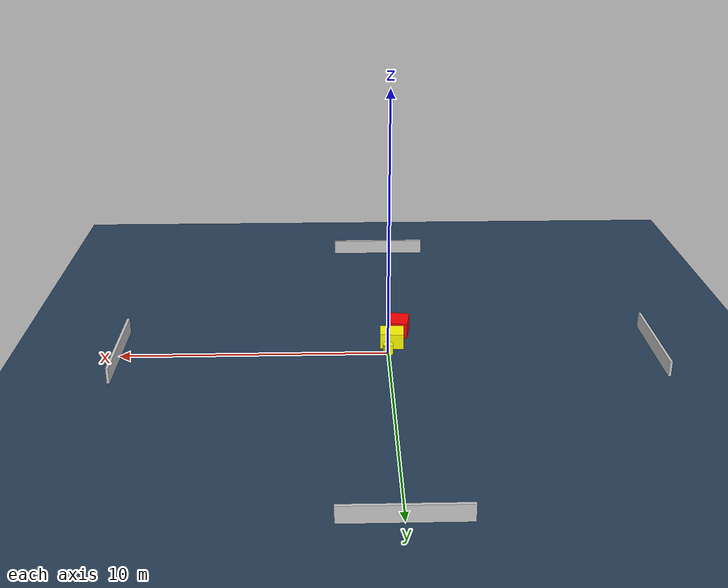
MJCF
<?xml version="1.0" ?>
<mujoco model="generated_environment">
  <option timestep="0.01" integrator="RK4" cone="elliptic"/>
  <default>
    <geom density="1"/>
  </default>
  <asset>
    <texture builtin="gradient" height="3072" name="skybox" rgb1="0.3 0.5 0.7" rgb2="0 0 0" type="skybox" width="512"/>
    <texture builtin="checker" height="300" name="groundplane" rgb1="0.2 0.3 0.4" rgb2="0.1 0.2 0.3" type="2d" width="300"/>
    <material name="groundplane" reflectance="0.2" texrepeat="5 5" texture="groundplane"/>
  </asset>
  <worldbody>
    <light dir="0 0 -1" directional="true" pos="0 0 1.5"/>
    <geom condim="3" friction="0.5 0.005 0.001" material="groundplane" name="floor" pos="0 0 0" size="0 0 0.05" type="plane"/>
    <body name="walls">
      <geom name="wall_1" condim="4" pos="-10.0 0.0 0.3" rgba="0.800000011920929 0.800000011920929 0.800000011920929 1.0" size="0.05 2.0 0.3" type="box"/>
      <geom name="wall_2" condim="4" pos="10.0 0.0 0.3" rgba="0.800000011920929 0.800000011920929 0.800000011920929 1.0" size="0.05 2.0 0.3" type="box"/>
      <geom name="wall_3" condim="4" pos="0.0 -10.0 0.3" rgba="0.800000011920929 0.800000011920929 0.800000011920929 1.0" size="2.0 0.05 0.3" type="box"/>
      <geom name="wall_4" condim="4" pos="0.0 10.0 0.3" rgba="0.800000011920929 0.800000011920929 0.800000011920929 1.0" size="2.0 0.05 0.3" type="box"/>
    </body>
    <body name="robot">
      <joint name="joint_x" type="slide" pos="0 0 0" axis="1 0 0"/>
      <joint name="joint_y" type="slide" pos="0 0 0" axis="0 1 0"/>
      <geom name="robot" type="cylinder" pos="0.0 0.0 0.2" size="0.2 0.2 0.0" mass="5.0" friction="1.0 0.005 0.0001" condim="4" rgba="1.0 1.0 0.0 1.0"/>
    </body>
    <body name="obstacle_1_movable">
      <geom name="obstacle_1_movable" condim="4" pos="-0.1841014403044401 -0.7303105227306099 0.3" euler="0 0 176.88439764015638" friction="0.0 0.005 0.001" rgba="1.0 1.0 0.0 1.0" size="0.4453772426604526 0.37792223975896855 0.3" type="box" mass="0.1"/>
      <joint type="free"/>
    </body>
    <body name="obstacle_2_static">
      <geom name="obstacle_2_static" condim="4" pos="-0.4827903826967716 -1.748762720988145 0.3" euler="0 0 81.20203027829199" friction="0.0 0.005 0.001" rgba="1.0 0.0 0.0 1.0" size="0.46942750422817076 0.38509739916657637 0.3" type="box"/>
    </body>
  </worldbody>
  <actuator>
    <motor name="actuator_x" joint="joint_x" gear="1" ctrlrange="-1 1"/>
    <motor name="actuator_y" joint="joint_y" gear="1" ctrlrange="-1 1"/>
  </actuator>
</mujoco>
